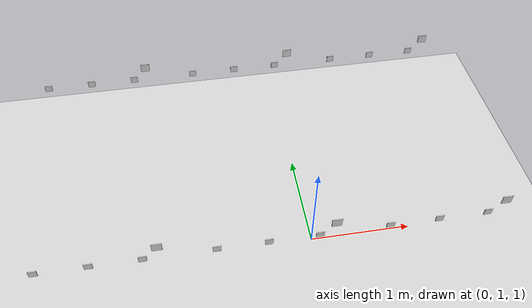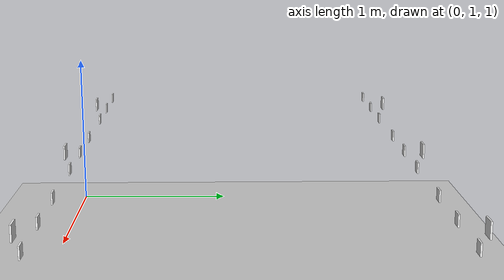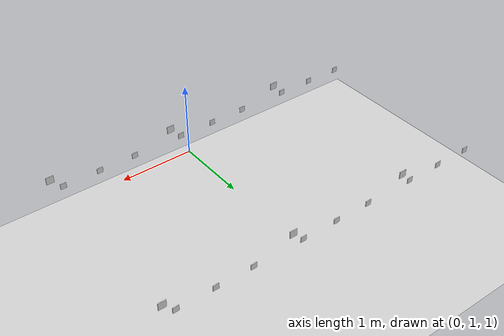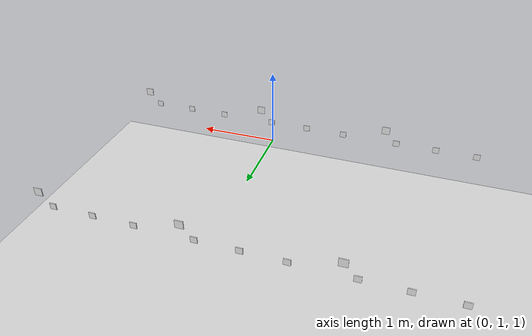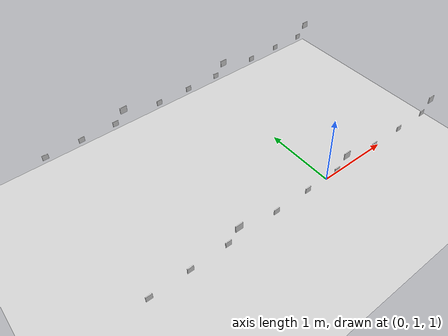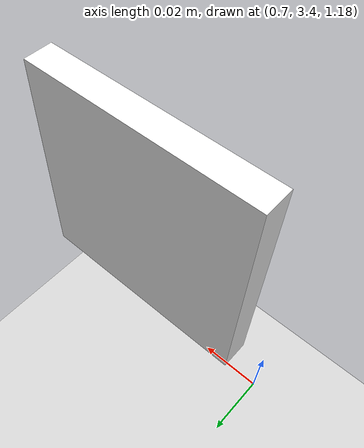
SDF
<sdf version="1.6">
 <world name="default">
  <include><uri>model://ground_plane</uri></include>
  <include><uri>model://sun</uri></include>
  <model name="stag_hd17_s1">
   <static>true</static>
   <pose>-1.500000 0.900000 1.391500 1.5708 0 0</pose>
   <link name="marker_link">
    <collision name="collision"><geometry><box><size>0.1 0.1 0.01</size></box></geometry></collision>
    <visual name="visual">
     <geometry><box><size>0.1 0.1 0.01</size></box></geometry>
     <material>
      <script>
       <uri>model://STag_marker_HD17/materials/scripts</uri>
       <uri>model://STag_marker_HD17/materials/textures</uri>
       <name>STagMarkerHD17/marker_00000</name>
      </script>
      <ambient>1 1 1 1</ambient>
      <diffuse>1 1 1 1</diffuse>
     </material>
     <pose>0 0 0.001 0 0 0</pose>
    </visual>
   </link>
  </model>
  <model name="stag_hd15_s1_m1">
   <static>true</static>
   <pose>-2.650000 0.900000 1.227000 1.5708 0 0</pose>
   <link name="marker_link">
    <collision name="collision"><geometry><box><size>0.08 0.08 0.01</size></box></geometry></collision>
    <visual name="visual">
     <geometry><box><size>0.08 0.08 0.01</size></box></geometry>
     <material>
      <script>
       <uri>model://STag_marker_HD15/materials/scripts</uri>
       <uri>model://STag_marker_HD15/materials/textures</uri>
       <name>STagMarkerHD15/marker_00000</name>
      </script>
      <ambient>1 1 1 1</ambient>
      <diffuse>1 1 1 1</diffuse>
     </material>
     <pose>0 0 0.001 0 0 0</pose>
    </visual>
   </link>
  </model>
  <model name="stag_hd15_s1_m2">
   <static>true</static>
   <pose>-2.150000 0.900000 1.227000 1.5708 0 0</pose>
   <link name="marker_link">
    <collision name="collision"><geometry><box><size>0.08 0.08 0.01</size></box></geometry></collision>
    <visual name="visual">
     <geometry><box><size>0.08 0.08 0.01</size></box></geometry>
     <material>
      <script>
       <uri>model://STag_marker_HD15/materials/scripts</uri>
       <uri>model://STag_marker_HD15/materials/textures</uri>
       <name>STagMarkerHD15/marker_00001</name>
      </script>
      <ambient>1 1 1 1</ambient>
      <diffuse>1 1 1 1</diffuse>
     </material>
     <pose>0 0 0.001 0 0 0</pose>
    </visual>
   </link>
  </model>
  <model name="stag_hd15_s1_m3">
   <static>true</static>
   <pose>-1.650000 0.900000 1.227000 1.5708 0 0</pose>
   <link name="marker_link">
    <collision name="collision"><geometry><box><size>0.08 0.08 0.01</size></box></geometry></collision>
    <visual name="visual">
     <geometry><box><size>0.08 0.08 0.01</size></box></geometry>
     <material>
      <script>
       <uri>model://STag_marker_HD15/materials/scripts</uri>
       <uri>model://STag_marker_HD15/materials/textures</uri>
       <name>STagMarkerHD15/marker_00002</name>
      </script>
      <ambient>1 1 1 1</ambient>
      <diffuse>1 1 1 1</diffuse>
     </material>
     <pose>0 0 0.001 0 0 0</pose>
    </visual>
   </link>
  </model>
  <model name="stag_hd17_s2">
   <static>true</static>
   <pose>0.200000 0.900000 1.391500 1.5708 0 0</pose>
   <link name="marker_link">
    <collision name="collision"><geometry><box><size>0.1 0.1 0.01</size></box></geometry></collision>
    <visual name="visual">
     <geometry><box><size>0.1 0.1 0.01</size></box></geometry>
     <material>
      <script>
       <uri>model://STag_marker_HD17/materials/scripts</uri>
       <uri>model://STag_marker_HD17/materials/textures</uri>
       <name>STagMarkerHD17/marker_00001</name>
      </script>
      <ambient>1 1 1 1</ambient>
      <diffuse>1 1 1 1</diffuse>
     </material>
     <pose>0 0 0.001 0 0 0</pose>
    </visual>
   </link>
  </model>
  <model name="stag_hd15_s2_m1">
   <static>true</static>
   <pose>-0.950000 0.900000 1.227000 1.5708 0 0</pose>
   <link name="marker_link">
    <collision name="collision"><geometry><box><size>0.08 0.08 0.01</size></box></geometry></collision>
    <visual name="visual">
     <geometry><box><size>0.08 0.08 0.01</size></box></geometry>
     <material>
      <script>
       <uri>model://STag_marker_HD15/materials/scripts</uri>
       <uri>model://STag_marker_HD15/materials/textures</uri>
       <name>STagMarkerHD15/marker_00003</name>
      </script>
      <ambient>1 1 1 1</ambient>
      <diffuse>1 1 1 1</diffuse>
     </material>
     <pose>0 0 0.001 0 0 0</pose>
    </visual>
   </link>
  </model>
  <model name="stag_hd15_s2_m2">
   <static>true</static>
   <pose>-0.450000 0.900000 1.227000 1.5708 0 0</pose>
   <link name="marker_link">
    <collision name="collision"><geometry><box><size>0.08 0.08 0.01</size></box></geometry></collision>
    <visual name="visual">
     <geometry><box><size>0.08 0.08 0.01</size></box></geometry>
     <material>
      <script>
       <uri>model://STag_marker_HD15/materials/scripts</uri>
       <uri>model://STag_marker_HD15/materials/textures</uri>
       <name>STagMarkerHD15/marker_00004</name>
      </script>
      <ambient>1 1 1 1</ambient>
      <diffuse>1 1 1 1</diffuse>
     </material>
     <pose>0 0 0.001 0 0 0</pose>
    </visual>
   </link>
  </model>
  <model name="stag_hd15_s2_m3">
   <static>true</static>
   <pose>0.050000 0.900000 1.227000 1.5708 0 0</pose>
   <link name="marker_link">
    <collision name="collision"><geometry><box><size>0.08 0.08 0.01</size></box></geometry></collision>
    <visual name="visual">
     <geometry><box><size>0.08 0.08 0.01</size></box></geometry>
     <material>
      <script>
       <uri>model://STag_marker_HD15/materials/scripts</uri>
       <uri>model://STag_marker_HD15/materials/textures</uri>
       <name>STagMarkerHD15/marker_00005</name>
      </script>
      <ambient>1 1 1 1</ambient>
      <diffuse>1 1 1 1</diffuse>
     </material>
     <pose>0 0 0.001 0 0 0</pose>
    </visual>
   </link>
  </model>
  <model name="stag_hd17_s3">
   <static>true</static>
   <pose>1.900000 0.900000 1.391500 1.5708 0 0</pose>
   <link name="marker_link">
    <collision name="collision"><geometry><box><size>0.1 0.1 0.01</size></box></geometry></collision>
    <visual name="visual">
     <geometry><box><size>0.1 0.1 0.01</size></box></geometry>
     <material>
      <script>
       <uri>model://STag_marker_HD17/materials/scripts</uri>
       <uri>model://STag_marker_HD17/materials/textures</uri>
       <name>STagMarkerHD17/marker_00002</name>
      </script>
      <ambient>1 1 1 1</ambient>
      <diffuse>1 1 1 1</diffuse>
     </material>
     <pose>0 0 0.001 0 0 0</pose>
    </visual>
   </link>
  </model>
  <model name="stag_hd15_s3_m1">
   <static>true</static>
   <pose>0.750000 0.900000 1.227000 1.5708 0 0</pose>
   <link name="marker_link">
    <collision name="collision"><geometry><box><size>0.08 0.08 0.01</size></box></geometry></collision>
    <visual name="visual">
     <geometry><box><size>0.08 0.08 0.01</size></box></geometry>
     <material>
      <script>
       <uri>model://STag_marker_HD15/materials/scripts</uri>
       <uri>model://STag_marker_HD15/materials/textures</uri>
       <name>STagMarkerHD15/marker_00006</name>
      </script>
      <ambient>1 1 1 1</ambient>
      <diffuse>1 1 1 1</diffuse>
     </material>
     <pose>0 0 0.001 0 0 0</pose>
    </visual>
   </link>
  </model>
  <model name="stag_hd15_s3_m2">
   <static>true</static>
   <pose>1.250000 0.900000 1.227000 1.5708 0 0</pose>
   <link name="marker_link">
    <collision name="collision"><geometry><box><size>0.08 0.08 0.01</size></box></geometry></collision>
    <visual name="visual">
     <geometry><box><size>0.08 0.08 0.01</size></box></geometry>
     <material>
      <script>
       <uri>model://STag_marker_HD15/materials/scripts</uri>
       <uri>model://STag_marker_HD15/materials/textures</uri>
       <name>STagMarkerHD15/marker_00007</name>
      </script>
      <ambient>1 1 1 1</ambient>
      <diffuse>1 1 1 1</diffuse>
     </material>
     <pose>0 0 0.001 0 0 0</pose>
    </visual>
   </link>
  </model>
  <model name="stag_hd15_s3_m3">
   <static>true</static>
   <pose>1.750000 0.900000 1.227000 1.5708 0 0</pose>
   <link name="marker_link">
    <collision name="collision"><geometry><box><size>0.08 0.08 0.01</size></box></geometry></collision>
    <visual name="visual">
     <geometry><box><size>0.08 0.08 0.01</size></box></geometry>
     <material>
      <script>
       <uri>model://STag_marker_HD15/materials/scripts</uri>
       <uri>model://STag_marker_HD15/materials/textures</uri>
       <name>STagMarkerHD15/marker_00008</name>
      </script>
      <ambient>1 1 1 1</ambient>
      <diffuse>1 1 1 1</diffuse>
     </material>
     <pose>0 0 0.001 0 0 0</pose>
    </visual>
   </link>
  </model>
  <model name="stag_hd17_s4">
   <static>true</static>
   <pose>-1.500000 3.400000 1.391500 1.5708 0 0</pose>
   <link name="marker_link">
    <collision name="collision"><geometry><box><size>0.1 0.1 0.01</size></box></geometry></collision>
    <visual name="visual">
     <geometry><box><size>0.1 0.1 0.01</size></box></geometry>
     <material>
      <script>
       <uri>model://STag_marker_HD17/materials/scripts</uri>
       <uri>model://STag_marker_HD17/materials/textures</uri>
       <name>STagMarkerHD17/marker_00003</name>
      </script>
      <ambient>1 1 1 1</ambient>
      <diffuse>1 1 1 1</diffuse>
     </material>
     <pose>0 0 0.001 0 0 0</pose>
    </visual>
   </link>
  </model>
  <model name="stag_hd15_s4_m1">
   <static>true</static>
   <pose>-2.650000 3.400000 1.227000 1.5708 0 0</pose>
   <link name="marker_link">
    <collision name="collision"><geometry><box><size>0.08 0.08 0.01</size></box></geometry></collision>
    <visual name="visual">
     <geometry><box><size>0.08 0.08 0.01</size></box></geometry>
     <material>
      <script>
       <uri>model://STag_marker_HD15/materials/scripts</uri>
       <uri>model://STag_marker_HD15/materials/textures</uri>
       <name>STagMarkerHD15/marker_00009</name>
      </script>
      <ambient>1 1 1 1</ambient>
      <diffuse>1 1 1 1</diffuse>
     </material>
     <pose>0 0 0.001 0 0 0</pose>
    </visual>
   </link>
  </model>
  <model name="stag_hd15_s4_m2">
   <static>true</static>
   <pose>-2.150000 3.400000 1.227000 1.5708 0 0</pose>
   <link name="marker_link">
    <collision name="collision"><geometry><box><size>0.08 0.08 0.01</size></box></geometry></collision>
    <visual name="visual">
     <geometry><box><size>0.08 0.08 0.01</size></box></geometry>
     <material>
      <script>
       <uri>model://STag_marker_HD15/materials/scripts</uri>
       <uri>model://STag_marker_HD15/materials/textures</uri>
       <name>STagMarkerHD15/marker_00010</name>
      </script>
      <ambient>1 1 1 1</ambient>
      <diffuse>1 1 1 1</diffuse>
     </material>
     <pose>0 0 0.001 0 0 0</pose>
    </visual>
   </link>
  </model>
  <model name="stag_hd15_s4_m3">
   <static>true</static>
   <pose>-1.650000 3.400000 1.227000 1.5708 0 0</pose>
   <link name="marker_link">
    <collision name="collision"><geometry><box><size>0.08 0.08 0.01</size></box></geometry></collision>
    <visual name="visual">
     <geometry><box><size>0.08 0.08 0.01</size></box></geometry>
     <material>
      <script>
       <uri>model://STag_marker_HD15/materials/scripts</uri>
       <uri>model://STag_marker_HD15/materials/textures</uri>
       <name>STagMarkerHD15/marker_00011</name>
      </script>
      <ambient>1 1 1 1</ambient>
      <diffuse>1 1 1 1</diffuse>
     </material>
     <pose>0 0 0.001 0 0 0</pose>
    </visual>
   </link>
  </model>
  <model name="stag_hd17_s5">
   <static>true</static>
   <pose>0.200000 3.400000 1.391500 1.5708 0 0</pose>
   <link name="marker_link">
    <collision name="collision"><geometry><box><size>0.1 0.1 0.01</size></box></geometry></collision>
    <visual name="visual">
     <geometry><box><size>0.1 0.1 0.01</size></box></geometry>
     <material>
      <script>
       <uri>model://STag_marker_HD17/materials/scripts</uri>
       <uri>model://STag_marker_HD17/materials/textures</uri>
       <name>STagMarkerHD17/marker_00004</name>
      </script>
      <ambient>1 1 1 1</ambient>
      <diffuse>1 1 1 1</diffuse>
     </material>
     <pose>0 0 0.001 0 0 0</pose>
    </visual>
   </link>
  </model>
  <model name="stag_hd15_s5_m1">
   <static>true</static>
   <pose>-0.950000 3.400000 1.227000 1.5708 0 0</pose>
   <link name="marker_link">
    <collision name="collision"><geometry><box><size>0.08 0.08 0.01</size></box></geometry></collision>
    <visual name="visual">
     <geometry><box><size>0.08 0.08 0.01</size></box></geometry>
     <material>
      <script>
       <uri>model://STag_marker_HD15/materials/scripts</uri>
       <uri>model://STag_marker_HD15/materials/textures</uri>
       <name>STagMarkerHD15/marker_00012</name>
      </script>
      <ambient>1 1 1 1</ambient>
      <diffuse>1 1 1 1</diffuse>
     </material>
     <pose>0 0 0.001 0 0 0</pose>
    </visual>
   </link>
  </model>
  <model name="stag_hd15_s5_m2">
   <static>true</static>
   <pose>-0.450000 3.400000 1.227000 1.5708 0 0</pose>
   <link name="marker_link">
    <collision name="collision"><geometry><box><size>0.08 0.08 0.01</size></box></geometry></collision>
    <visual name="visual">
     <geometry><box><size>0.08 0.08 0.01</size></box></geometry>
     <material>
      <script>
       <uri>model://STag_marker_HD15/materials/scripts</uri>
       <uri>model://STag_marker_HD15/materials/textures</uri>
       <name>STagMarkerHD15/marker_00013</name>
      </script>
      <ambient>1 1 1 1</ambient>
      <diffuse>1 1 1 1</diffuse>
     </material>
     <pose>0 0 0.001 0 0 0</pose>
    </visual>
   </link>
  </model>
  <model name="stag_hd15_s5_m3">
   <static>true</static>
   <pose>0.050000 3.400000 1.227000 1.5708 0 0</pose>
   <link name="marker_link">
    <collision name="collision"><geometry><box><size>0.08 0.08 0.01</size></box></geometry></collision>
    <visual name="visual">
     <geometry><box><size>0.08 0.08 0.01</size></box></geometry>
     <material>
      <script>
       <uri>model://STag_marker_HD15/materials/scripts</uri>
       <uri>model://STag_marker_HD15/materials/textures</uri>
       <name>STagMarkerHD15/marker_00014</name>
      </script>
      <ambient>1 1 1 1</ambient>
      <diffuse>1 1 1 1</diffuse>
     </material>
     <pose>0 0 0.001 0 0 0</pose>
    </visual>
   </link>
  </model>
  <model name="stag_hd17_s6">
   <static>true</static>
   <pose>1.900000 3.400000 1.391500 1.5708 0 0</pose>
   <link name="marker_link">
    <collision name="collision"><geometry><box><size>0.1 0.1 0.01</size></box></geometry></collision>
    <visual name="visual">
     <geometry><box><size>0.1 0.1 0.01</size></box></geometry>
     <material>
      <script>
       <uri>model://STag_marker_HD17/materials/scripts</uri>
       <uri>model://STag_marker_HD17/materials/textures</uri>
       <name>STagMarkerHD17/marker_00005</name>
      </script>
      <ambient>1 1 1 1</ambient>
      <diffuse>1 1 1 1</diffuse>
     </material>
     <pose>0 0 0.001 0 0 0</pose>
    </visual>
   </link>
  </model>
  <model name="stag_hd15_s6_m1">
   <static>true</static>
   <pose>0.750000 3.400000 1.227000 1.5708 0 0</pose>
   <link name="marker_link">
    <collision name="collision"><geometry><box><size>0.08 0.08 0.01</size></box></geometry></collision>
    <visual name="visual">
     <geometry><box><size>0.08 0.08 0.01</size></box></geometry>
     <material>
      <script>
       <uri>model://STag_marker_HD15/materials/scripts</uri>
       <uri>model://STag_marker_HD15/materials/textures</uri>
       <name>STagMarkerHD15/marker_00015</name>
      </script>
      <ambient>1 1 1 1</ambient>
      <diffuse>1 1 1 1</diffuse>
     </material>
     <pose>0 0 0.001 0 0 0</pose>
    </visual>
   </link>
  </model>
  <model name="stag_hd15_s6_m2">
   <static>true</static>
   <pose>1.250000 3.400000 1.227000 1.5708 0 0</pose>
   <link name="marker_link">
    <collision name="collision"><geometry><box><size>0.08 0.08 0.01</size></box></geometry></collision>
    <visual name="visual">
     <geometry><box><size>0.08 0.08 0.01</size></box></geometry>
     <material>
      <script>
       <uri>model://STag_marker_HD15/materials/scripts</uri>
       <uri>model://STag_marker_HD15/materials/textures</uri>
       <name>STagMarkerHD15/marker_00016</name>
      </script>
      <ambient>1 1 1 1</ambient>
      <diffuse>1 1 1 1</diffuse>
     </material>
     <pose>0 0 0.001 0 0 0</pose>
    </visual>
   </link>
  </model>
  <model name="stag_hd15_s6_m3">
   <static>true</static>
   <pose>1.750000 3.400000 1.227000 1.5708 0 0</pose>
   <link name="marker_link">
    <collision name="collision"><geometry><box><size>0.08 0.08 0.01</size></box></geometry></collision>
    <visual name="visual">
     <geometry><box><size>0.08 0.08 0.01</size></box></geometry>
     <material>
      <script>
       <uri>model://STag_marker_HD15/materials/scripts</uri>
       <uri>model://STag_marker_HD15/materials/textures</uri>
       <name>STagMarkerHD15/marker_00017</name>
      </script>
      <ambient>1 1 1 1</ambient>
      <diffuse>1 1 1 1</diffuse>
     </material>
     <pose>0 0 0.001 0 0 0</pose>
    </visual>
   </link>
  </model>
 </world>
</sdf>
